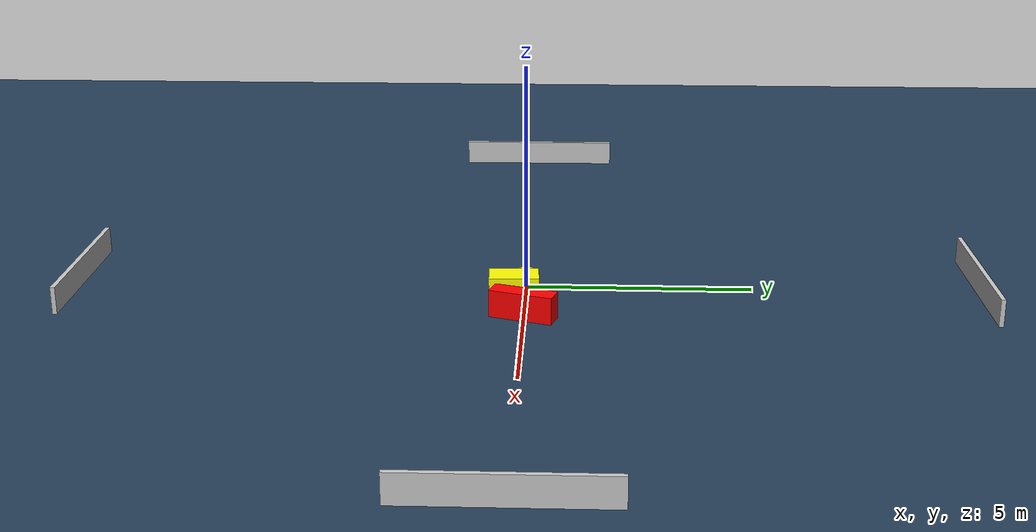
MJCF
<?xml version="1.0" ?>
<mujoco model="generated_environment">
  <option timestep="0.01" integrator="RK4" cone="elliptic"/>
  <default>
    <geom density="1"/>
  </default>
  <asset>
    <texture builtin="gradient" height="3072" name="skybox" rgb1="0.3 0.5 0.7" rgb2="0 0 0" type="skybox" width="512"/>
    <texture builtin="checker" height="300" name="groundplane" rgb1="0.2 0.3 0.4" rgb2="0.1 0.2 0.3" type="2d" width="300"/>
    <material name="groundplane" reflectance="0.2" texrepeat="5 5" texture="groundplane"/>
  </asset>
  <worldbody>
    <light dir="0 0 -1" directional="true" pos="0 0 1.5"/>
    <geom condim="3" friction="0.5 0.005 0.001" material="groundplane" name="floor" pos="0 0 0" size="0 0 0.05" type="plane"/>
    <body name="walls">
      <geom name="wall_1" condim="4" pos="-10.0 0.0 0.3" rgba="0.800000011920929 0.800000011920929 0.800000011920929 1.0" size="0.05 2.0 0.3" type="box"/>
      <geom name="wall_2" condim="4" pos="10.0 0.0 0.3" rgba="0.800000011920929 0.800000011920929 0.800000011920929 1.0" size="0.05 2.0 0.3" type="box"/>
      <geom name="wall_3" condim="4" pos="0.0 -10.0 0.3" rgba="0.800000011920929 0.800000011920929 0.800000011920929 1.0" size="2.0 0.05 0.3" type="box"/>
      <geom name="wall_4" condim="4" pos="0.0 10.0 0.3" rgba="0.800000011920929 0.800000011920929 0.800000011920929 1.0" size="2.0 0.05 0.3" type="box"/>
    </body>
    <body name="robot">
      <joint name="joint_x" type="slide" pos="0 0 0" axis="1 0 0"/>
      <joint name="joint_y" type="slide" pos="0 0 0" axis="0 1 0"/>
      <geom name="robot" type="cylinder" pos="0.0 0.0 0.2" size="0.2 0.2 0.0" mass="5.0" friction="1.0 0.005 0.0001" condim="4" rgba="1.0 1.0 0.0 1.0"/>
    </body>
    <body name="obstacle_1_movable">
      <geom name="obstacle_1_movable" condim="4" pos="0.7780216485721492 -0.24360157675511665 0.3" euler="0 0 2.5065270908242976" friction="0.0 0.005 0.001" rgba="1.0 1.0 0.0 1.0" size="0.32951375630283 0.5426033911246899 0.3" type="box" mass="0.1"/>
      <joint type="free"/>
    </body>
    <body name="obstacle_2_static">
      <geom name="obstacle_2_static" condim="4" pos="1.8321654395738154 -0.004742227317035225 0.3" euler="0 0 161.6923880628661" friction="0.0 0.005 0.001" rgba="1.0 0.0 0.0 1.0" size="0.21575722938544795 0.7049594718242391 0.3" type="box"/>
    </body>
  </worldbody>
  <actuator>
    <motor name="actuator_x" joint="joint_x" gear="1" ctrlrange="-1 1"/>
    <motor name="actuator_y" joint="joint_y" gear="1" ctrlrange="-1 1"/>
  </actuator>
</mujoco>
